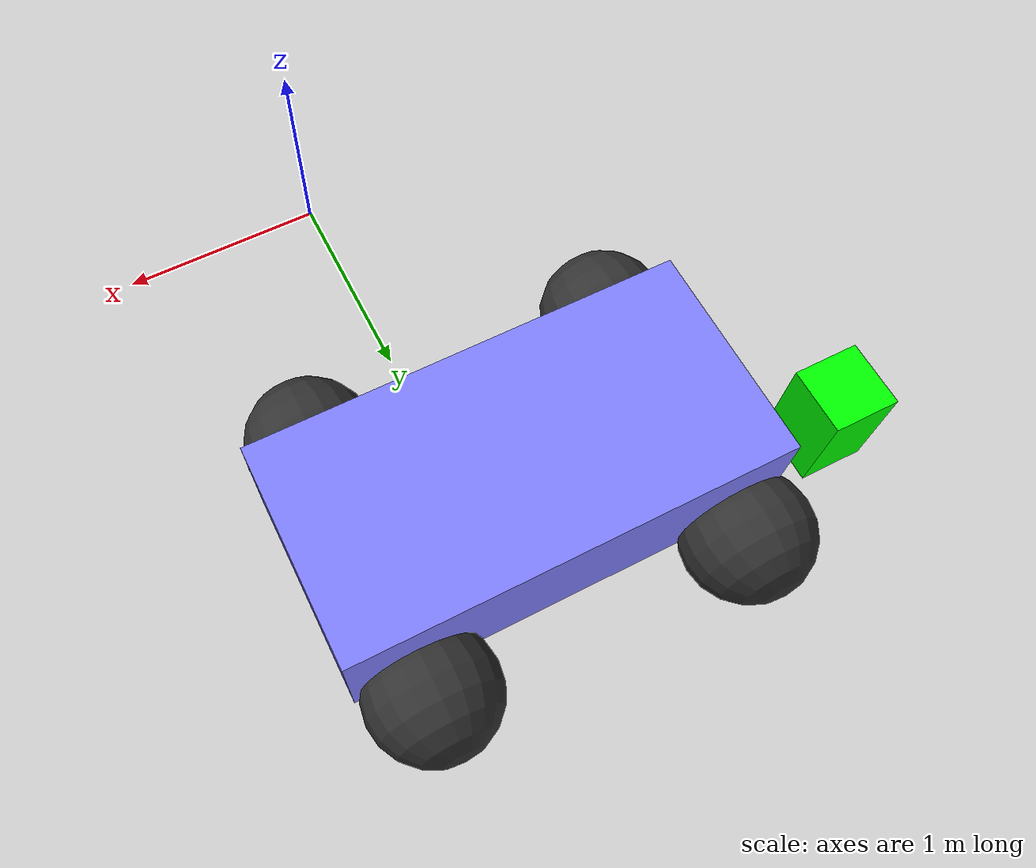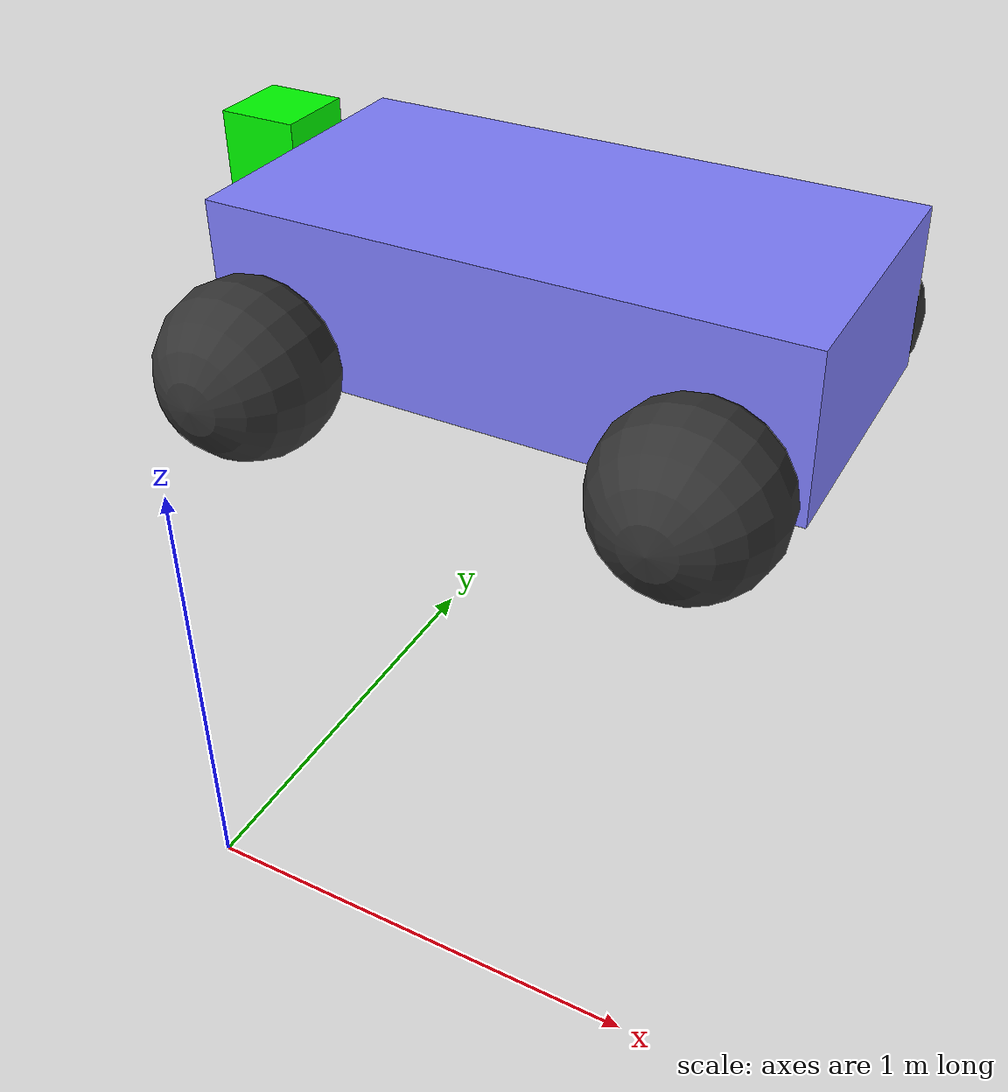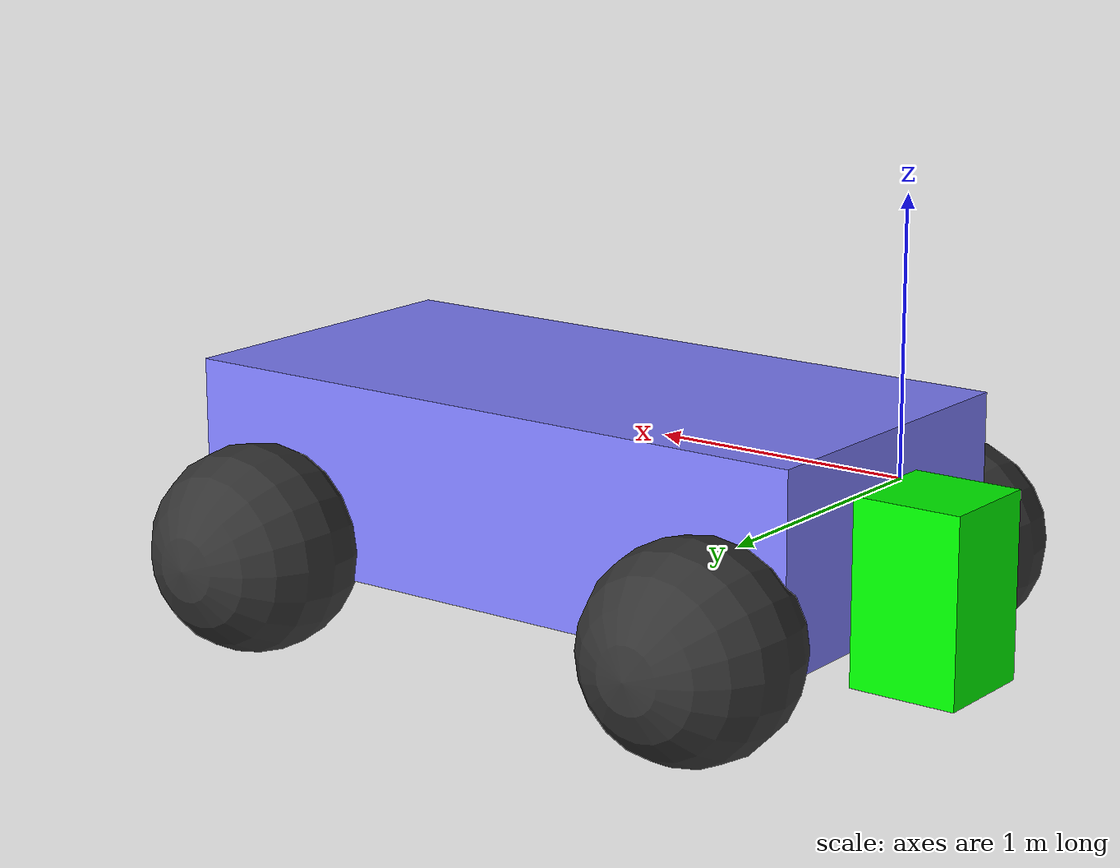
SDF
<?xml version="1.0" ?>
<sdf version="1.6">
  <world name="detachable_joint">
    <physics name="fast" type="ignored">
      <real_time_factor>0</real_time_factor>
    </physics>

    <plugin filename="gz-sim-physics-system"
      name="gz::sim::systems::Physics"/>

    <model name="ground_plane">
      <static>true</static>
      <link name="link">
        <collision name="collision">
          <geometry>
            <plane>
              <normal>0 0 1</normal>
              <size>100 100</size>
            </plane>
          </geometry>
        </collision>
      </link>
    </model>

    <model name="M1">
      <pose>0 0 1 0 0 0</pose>
      <link name="body">
        <inertial>
          <mass>1</mass>
          <inertia>
            <ixx>0.667</ixx>
            <ixy>0</ixy>
            <ixz>0</ixz>
            <iyy>0.667</iyy>
            <iyz>0</iyz>
            <izz>0.667</izz>
          </inertia>
        </inertial>
        <collision name="collision">
          <geometry>
            <box>
              <size>2.0 2.0 2.0</size>
            </box>
          </geometry>
        </collision>
      </link>

      <plugin filename="gz-sim-detachable-joint-system"
              name="gz::sim::systems::DetachableJoint">
        <parent_link>body</parent_link>
        <child_model>M2</child_model>
        <child_link>body</child_link>
      </plugin>
    </model>

    <model name="M2">
      <pose>0 0 5 0 0 0</pose>
      <link name="body">
        <inertial>
          <mass>1</mass>
          <inertia>
            <ixx>0.667</ixx>
            <ixy>0</ixy>
            <ixz>0</ixz>
            <iyy>0.667</iyy>
            <iyz>0</iyz>
            <izz>0.667</izz>
          </inertia>
        </inertial>
        <collision name="collision">
          <geometry>
            <box>
              <size>2.0 2.0 2.0</size>
            </box>
          </geometry>
        </collision>
      </link>
    </model>

    <model name="M3">
      <pose>10 0 1 0 0 0</pose>
      <link name="body1">
        <inertial>
          <mass>1</mass>
          <inertia>
            <ixx>0.667</ixx>
            <ixy>0</ixy>
            <ixz>0</ixz>
            <iyy>0.667</iyy>
            <iyz>0</iyz>
            <izz>0.667</izz>
          </inertia>
        </inertial>
        <collision name="collision">
          <geometry>
            <box>
              <size>2.0 2.0 2.0</size>
            </box>
          </geometry>
        </collision>
      </link>
      <link name="body2">
        <pose>0 0 5 0 0 0</pose>
        <inertial>
          <mass>1</mass>
          <inertia>
            <ixx>0.667</ixx>
            <ixy>0</ixy>
            <ixz>0</ixz>
            <iyy>0.667</iyy>
            <iyz>0</iyz>
            <izz>0.667</izz>
          </inertia>
        </inertial>
        <collision name="collision">
          <geometry>
            <box>
              <size>2.0 2.0 2.0</size>
            </box>
          </geometry>
        </collision>
      </link>
      <plugin filename="gz-sim-detachable-joint-system"
              name="gz::sim::systems::DetachableJoint">
        <parent_link>body1</parent_link>
        <child_model>__model__</child_model>
        <child_link>body2</child_link>
      </plugin>
    </model>

    <model name='vehicle_blue'>
      <pose>0 2 0.325 0 -0 0</pose>
      <self_collide>true</self_collide>

      <link name='chassis'>
        <pose>-0.151427 -0 0.175 0 -0 0</pose>
        <inertial>
          <mass>1.14395</mass>
          <inertia>
            <ixx>0.126164</ixx>
            <ixy>0</ixy>
            <ixz>0</ixz>
            <iyy>0.416519</iyy>
            <iyz>0</iyz>
            <izz>0.481014</izz>
          </inertia>
        </inertial>
        <visual name='visual'>
          <geometry>
            <box>
              <size>2.01142 1 0.568726</size>
            </box>
          </geometry>
          <material>
            <ambient>0.5 0.5 1.0 1</ambient>
            <diffuse>0.5 0.5 1.0 1</diffuse>
            <specular>0.0 0.0 1.0 1</specular>
          </material>
        </visual>
        <collision name='collision'>
          <geometry>
            <box>
              <size>2.01142 1 0.568726</size>
            </box>
          </geometry>
        </collision>
      </link>

      <link name='front_left_wheel'>
        <pose>0.554283 0.625029 -0.025 -1.5707 0 0</pose>
        <inertial>
          <mass>2</mass>
          <inertia>
            <ixx>0.145833</ixx>
            <ixy>0</ixy>
            <ixz>0</ixz>
            <iyy>0.145833</iyy>
            <iyz>0</iyz>
            <izz>0.125</izz>
          </inertia>
        </inertial>
        <visual name='visual'>
          <geometry>
            <sphere>
              <radius>0.3</radius>
            </sphere>
          </geometry>
          <material>
            <ambient>0.2 0.2 0.2 1</ambient>
            <diffuse>0.2 0.2 0.2 1</diffuse>
            <specular>0.2 0.2 0.2 1</specular>
          </material>
        </visual>
        <collision name='collision'>
          <geometry>
            <sphere>
              <radius>0.3</radius>
            </sphere>
          </geometry>
          <surface>
            <friction>
              <ode>
                <mu>1</mu>
                <mu2>1</mu2>
                <slip1>0.035</slip1>
                <slip2>0</slip2>
                <fdir1>0 0 1</fdir1>
              </ode>
            </friction>
          </surface>
        </collision>
      </link>

      <link name='rear_left_wheel'>
        <pose>-0.957138 0.625029 -0.025 -1.5707 0 0</pose>
        <inertial>
          <mass>2</mass>
          <inertia>
            <ixx>0.145833</ixx>
            <ixy>0</ixy>
            <ixz>0</ixz>
            <iyy>0.145833</iyy>
            <iyz>0</iyz>
            <izz>0.125</izz>
          </inertia>
        </inertial>
        <visual name='visual'>
          <geometry>
            <sphere>
              <radius>0.3</radius>
            </sphere>
          </geometry>
          <material>
            <ambient>0.2 0.2 0.2 1</ambient>
            <diffuse>0.2 0.2 0.2 1</diffuse>
            <specular>0.2 0.2 0.2 1</specular>
          </material>
        </visual>
        <collision name='collision'>
          <geometry>
            <sphere>
              <radius>0.3</radius>
            </sphere>
          </geometry>
          <surface>
            <friction>
              <ode>
                <mu>1</mu>
                <mu2>1</mu2>
                <slip1>0.035</slip1>
                <slip2>0</slip2>
                <fdir1>0 0 1</fdir1>
              </ode>
            </friction>
          </surface>
        </collision>
      </link>

      <link name='front_right_wheel'>
        <pose>0.554282 -0.625029 -0.025 -1.5707 0 0</pose>
        <inertial>
          <mass>2</mass>
          <inertia>
            <ixx>0.145833</ixx>
            <ixy>0</ixy>
            <ixz>0</ixz>
            <iyy>0.145833</iyy>
            <iyz>0</iyz>
            <izz>0.125</izz>
          </inertia>
        </inertial>
        <visual name='visual'>
          <geometry>
            <sphere>
              <radius>0.3</radius>
            </sphere>
          </geometry>
          <material>
            <ambient>0.2 0.2 0.2 1</ambient>
            <diffuse>0.2 0.2 0.2 1</diffuse>
            <specular>0.2 0.2 0.2 1</specular>
          </material>
        </visual>
        <collision name='collision'>
          <geometry>
            <sphere>
              <radius>0.3</radius>
            </sphere>
          </geometry>
          <surface>
            <friction>
              <ode>
                <mu>1</mu>
                <mu2>1</mu2>
                <slip1>0.035</slip1>
                <slip2>0</slip2>
                <fdir1>0 0 1</fdir1>
              </ode>
            </friction>
          </surface>
        </collision>
      </link>

      <link name='rear_right_wheel'>
        <pose>-0.957138 -0.625029 -0.025 -1.5707 0 0</pose>
        <inertial>
          <mass>2</mass>
          <inertia>
            <ixx>0.145833</ixx>
            <ixy>0</ixy>
            <ixz>0</ixz>
            <iyy>0.145833</iyy>
            <iyz>0</iyz>
            <izz>0.125</izz>
          </inertia>
        </inertial>
        <visual name='visual'>
          <geometry>
            <sphere>
              <radius>0.3</radius>
            </sphere>
          </geometry>
          <material>
            <ambient>0.2 0.2 0.2 1</ambient>
            <diffuse>0.2 0.2 0.2 1</diffuse>
            <specular>0.2 0.2 0.2 1</specular>
          </material>
        </visual>
        <collision name='collision'>
          <geometry>
            <sphere>
              <radius>0.3</radius>
            </sphere>
          </geometry>
          <surface>
            <friction>
              <ode>
                <mu>1</mu>
                <mu2>1</mu2>
                <slip1>0.035</slip1>
                <slip2>0</slip2>
                <fdir1>0 0 1</fdir1>
              </ode>
            </friction>
          </surface>
        </collision>
      </link>

      <joint name='front_left_wheel_joint' type='revolute'>
        <parent>chassis</parent>
        <child>front_left_wheel</child>
        <axis>
          <xyz>0 0 1</xyz>
          <limit>
            <lower>-1.79769e+308</lower>
            <upper>1.79769e+308</upper>
          </limit>
        </axis>
      </joint>

      <joint name='front_right_wheel_joint' type='revolute'>
        <parent>chassis</parent>
        <child>front_right_wheel</child>
        <axis>
          <xyz>0 0 1</xyz>
          <limit>
            <lower>-1.79769e+308</lower>
            <upper>1.79769e+308</upper>
          </limit>
        </axis>
      </joint>

      <joint name='rear_left_wheel_joint' type='revolute'>
        <parent>chassis</parent>
        <child>rear_left_wheel</child>
        <axis>
          <xyz>0 0 1</xyz>
          <limit>
            <lower>-1.79769e+308</lower>
            <upper>1.79769e+308</upper>
          </limit>
        </axis>
      </joint>

      <joint name='rear_right_wheel_joint' type='revolute'>
        <parent>chassis</parent>
        <child>rear_right_wheel</child>
        <axis>
          <xyz>0 0 1</xyz>
          <limit>
            <lower>-1.79769e+308</lower>
            <upper>1.79769e+308</upper>
          </limit>
        </axis>
      </joint>

      <plugin
        filename="gz-sim-diff-drive-system"
        name="gz::sim::systems::DiffDrive">
        <left_joint>front_left_wheel_joint</left_joint>
        <left_joint>rear_left_wheel_joint</left_joint>
        <right_joint>front_right_wheel_joint</right_joint>
        <right_joint>rear_right_wheel_joint</right_joint>
        <wheel_separation>1.25</wheel_separation>
        <wheel_radius>0.3</wheel_radius>
      </plugin>
      <plugin filename="gz-sim-detachable-joint-system"
              name="gz::sim::systems::DetachableJoint">
       <parent_link>chassis</parent_link>
       <child_model>B1</child_model>
       <child_link>body</child_link>
       <detach_topic>/B1/detach</detach_topic>
       <attach_topic>/B1/attach</attach_topic>
      </plugin>
    </model>

    <model name="B1">
      <pose>-1.5 2.35 0.5 0 -0 0</pose>
      <link name='body'>
        <inertial>
          <mass>0.6</mass>
          <inertia>
            <ixx>0.017</ixx>
            <ixy>0</ixy>
            <ixz>0</ixz>
            <iyy>0.017</iyy>
            <iyz>0</iyz>
            <izz>0.009</izz>
          </inertia>
        </inertial>
        <visual name='visual'>
          <geometry>
            <box>
              <size>0.3 0.3 0.5</size>
            </box>
          </geometry>
          <material>
            <ambient>0.0 1.0 0.0 1</ambient>
            <diffuse>0.0 1.0 0.0 1</diffuse>
            <specular>0.5 0.5 0.5 1</specular>
          </material>
        </visual>
        <collision name='collision'>
          <geometry>
            <box>
              <size>0.3 0.3 0.5</size>
            </box>
          </geometry>
        </collision>
      </link>
    </model>

<!-- Models for testing initial_attach=false -->
    <model name="M6">
      <pose>30 0 1 0 0 0</pose>
      <link name="body">
        <inertial>
          <mass>1</mass>
          <inertia>
            <ixx>0.667</ixx>
            <ixy>0</ixy>
            <ixz>0</ixz>
            <iyy>0.667</iyy>
            <iyz>0</iyz>
            <izz>0.667</izz>
          </inertia>
        </inertial>
        <collision name="collision">
          <geometry>
            <box>
              <size>2.0 2.0 2.0</size>
            </box>
          </geometry>
        </collision>
      </link>

      <plugin filename="gz-sim-detachable-joint-system"
              name="gz::sim::systems::DetachableJoint">
        <parent_link>body</parent_link>
        <child_model>M7</child_model>
        <child_link>body</child_link>
        <initial_attach>false</initial_attach>
      </plugin>
    </model>

    <model name="M7">
      <pose>30 0 5 0 0 0</pose>
      <link name="body">
        <inertial>
          <mass>1</mass>
          <inertia>
            <ixx>0.667</ixx>
            <ixy>0</ixy>
            <ixz>0</ixz>
            <iyy>0.667</iyy>
            <iyz>0</iyz>
            <izz>0.667</izz>
          </inertia>
        </inertial>
        <collision name="collision">
          <geometry>
            <box>
              <size>2.0 2.0 2.0</size>
            </box>
          </geometry>
        </collision>
      </link>
    </model>
  </world>
</sdf>
